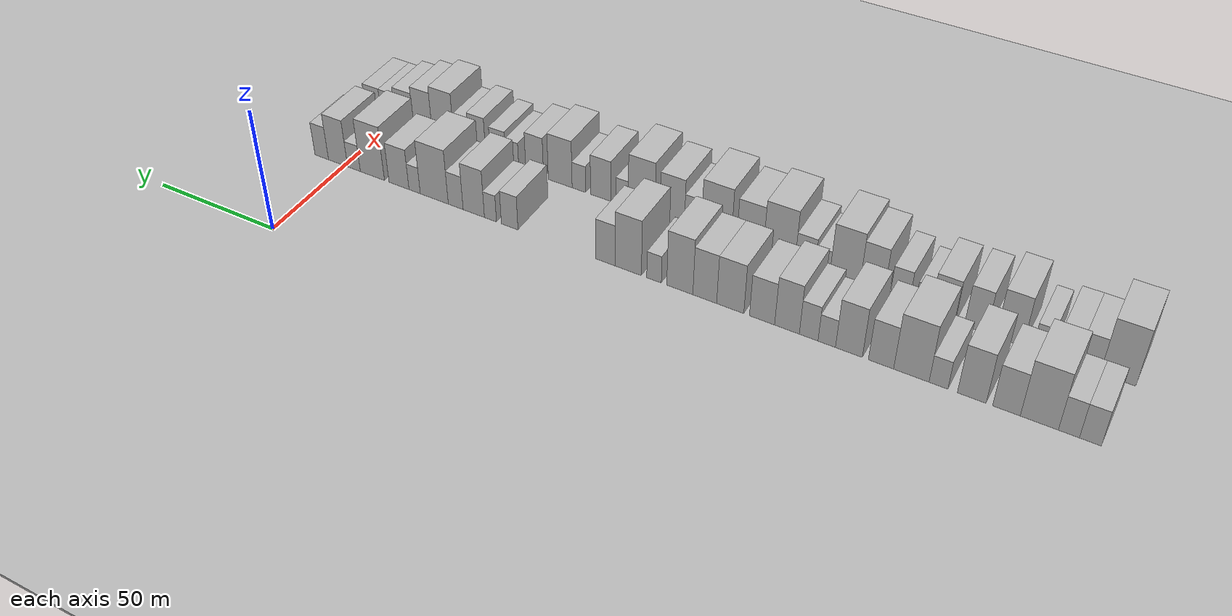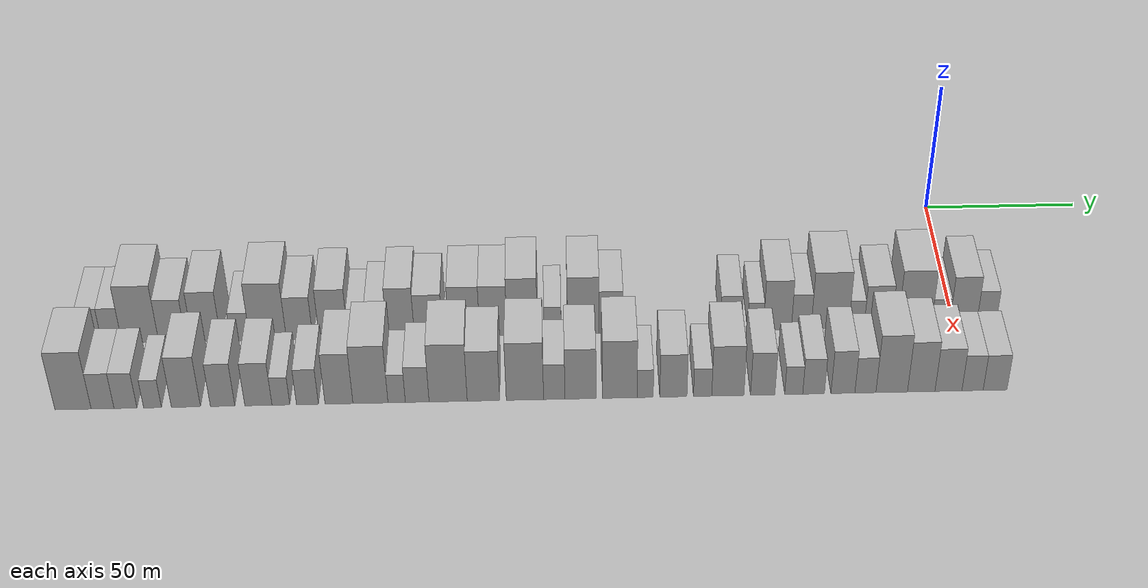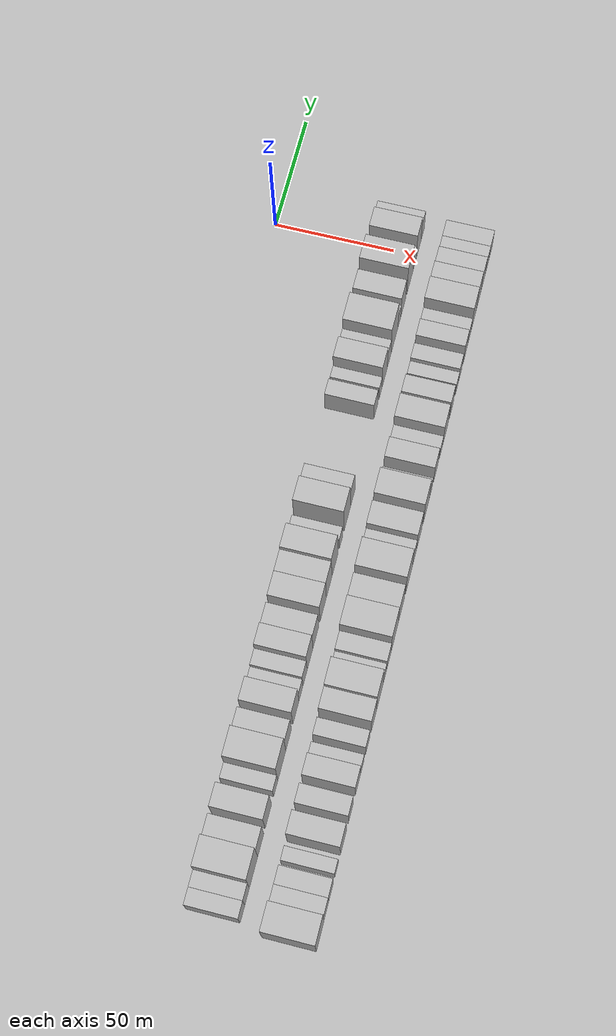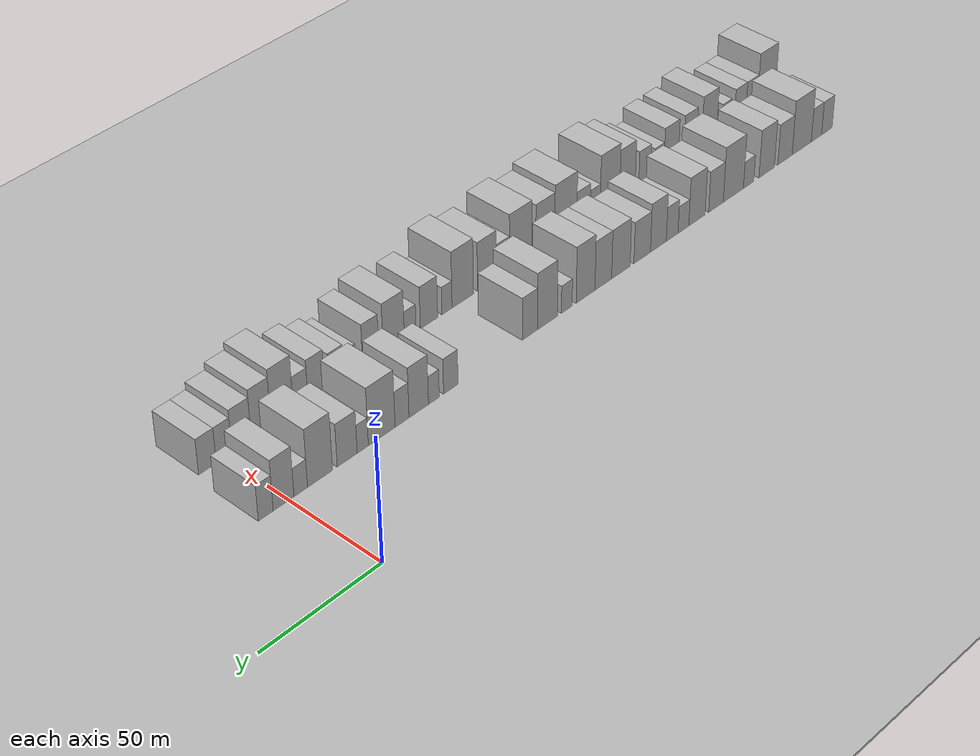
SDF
<sdf version="1.6">
 <world name="default">
  <include><name>ground_plane_1</name><uri>model://HANNAS_ground_plane</uri></include>
  <include>
   <name>ground_plane_2</name>
   <uri>model://HANNAS_ground_plane</uri>
   <pose>100 0 0  0 0 0</pose>
  </include>
  <model name="building_1">
   <static>1</static>
   <pose>50.0000 -271.7635 0 0.000000 0.000000 0.000000</pose>
   <link name="link">
    <pose>0 0 7.50 0 0 0</pose>
    <collision name="collision"><geometry><box><size>20.0000 6.4730 15.0000</size></box></geometry></collision>
    <visual name="visual">
     <cast_shadows>0</cast_shadows>
     <geometry><box><size>20.0000 6.4730 15.0000</size></box></geometry>
     <material>
      <script>
       <uri>model://HANNAS_wall/materials/scripts</uri>
       <uri>model://HANNAS_wall/materials/textures</uri>
       <name>vrc/HANNAS_wall</name>
      </script>
     </material>
    </visual>
   </link>
  </model>
  <model name="building_2">
   <static>1</static>
   <pose>50.0000 -265.3977 0 0.000000 0.000000 0.000000</pose>
   <link name="link">
    <pose>0 0 7.50 0 0 0</pose>
    <collision name="collision"><geometry><box><size>20.0000 6.2587 15.0000</size></box></geometry></collision>
    <visual name="visual">
     <cast_shadows>0</cast_shadows>
     <geometry><box><size>20.0000 6.2587 15.0000</size></box></geometry>
     <material>
      <script>
       <uri>model://HANNAS_wall/materials/scripts</uri>
       <uri>model://HANNAS_wall/materials/textures</uri>
       <name>vrc/HANNAS_wall</name>
      </script>
     </material>
    </visual>
   </link>
  </model>
  <model name="building_3">
   <static>1</static>
   <pose>50.0000 -256.5157 0 0.000000 0.000000 0.000000</pose>
   <link name="link">
    <pose>0 0 12.00 0 0 0</pose>
    <collision name="collision"><geometry><box><size>20.0000 11.5051 24.0000</size></box></geometry></collision>
    <visual name="visual">
     <cast_shadows>0</cast_shadows>
     <geometry><box><size>20.0000 11.5051 24.0000</size></box></geometry>
     <material>
      <script>
       <uri>model://HANNAS_wall/materials/scripts</uri>
       <uri>model://HANNAS_wall/materials/textures</uri>
       <name>vrc/HANNAS_wall</name>
      </script>
     </material>
    </visual>
   </link>
  </model>
  <model name="building_4">
   <static>1</static>
   <pose>50.0000 -246.5137 0 0.000000 0.000000 0.000000</pose>
   <link name="link">
    <pose>0 0 9.00 0 0 0</pose>
    <collision name="collision"><geometry><box><size>20.0000 8.4989 18.0000</size></box></geometry></collision>
    <visual name="visual">
     <cast_shadows>0</cast_shadows>
     <geometry><box><size>20.0000 8.4989 18.0000</size></box></geometry>
     <material>
      <script>
       <uri>model://HANNAS_wall/materials/scripts</uri>
       <uri>model://HANNAS_wall/materials/textures</uri>
       <name>vrc/HANNAS_wall</name>
      </script>
     </material>
    </visual>
   </link>
  </model>
  <model name="building_5">
   <static>1</static>
   <pose>50.0000 -235.7697 0 0.000000 0.000000 0.000000</pose>
   <link name="link">
    <pose>0 0 10.50 0 0 0</pose>
    <collision name="collision"><geometry><box><size>20.0000 8.9892 21.0000</size></box></geometry></collision>
    <visual name="visual">
     <cast_shadows>0</cast_shadows>
     <geometry><box><size>20.0000 8.9892 21.0000</size></box></geometry>
     <material>
      <script>
       <uri>model://HANNAS_wall/materials/scripts</uri>
       <uri>model://HANNAS_wall/materials/textures</uri>
       <name>vrc/HANNAS_wall</name>
      </script>
     </material>
    </visual>
   </link>
  </model>
  <model name="building_6">
   <static>1</static>
   <pose>50.0000 -225.2756 0 0.000000 0.000000 0.000000</pose>
   <link name="link">
    <pose>0 0 6.00 0 0 0</pose>
    <collision name="collision"><geometry><box><size>20.0000 5.9991 12.0000</size></box></geometry></collision>
    <visual name="visual">
     <cast_shadows>0</cast_shadows>
     <geometry><box><size>20.0000 5.9991 12.0000</size></box></geometry>
     <material>
      <script>
       <uri>model://HANNAS_wall/materials/scripts</uri>
       <uri>model://HANNAS_wall/materials/textures</uri>
       <name>vrc/HANNAS_wall</name>
      </script>
     </material>
    </visual>
   </link>
  </model>
  <model name="building_7">
   <static>1</static>
   <pose>50.0000 -216.5486 0 0.000000 0.000000 0.000000</pose>
   <link name="link">
    <pose>0 0 12.00 0 0 0</pose>
    <collision name="collision"><geometry><box><size>20.0000 11.4547 24.0000</size></box></geometry></collision>
    <visual name="visual">
     <cast_shadows>0</cast_shadows>
     <geometry><box><size>20.0000 11.4547 24.0000</size></box></geometry>
     <material>
      <script>
       <uri>model://HANNAS_wall/materials/scripts</uri>
       <uri>model://HANNAS_wall/materials/textures</uri>
       <name>vrc/HANNAS_wall</name>
      </script>
     </material>
    </visual>
   </link>
  </model>
  <model name="building_8">
   <static>1</static>
   <pose>50.0000 -206.6811 0 0.000000 0.000000 0.000000</pose>
   <link name="link">
    <pose>0 0 9.00 0 0 0</pose>
    <collision name="collision"><geometry><box><size>20.0000 8.2803 18.0000</size></box></geometry></collision>
    <visual name="visual">
     <cast_shadows>0</cast_shadows>
     <geometry><box><size>20.0000 8.2803 18.0000</size></box></geometry>
     <material>
      <script>
       <uri>model://HANNAS_wall/materials/scripts</uri>
       <uri>model://HANNAS_wall/materials/textures</uri>
       <name>vrc/HANNAS_wall</name>
      </script>
     </material>
    </visual>
   </link>
  </model>
  <model name="building_9">
   <static>1</static>
   <pose>50.0000 -196.0445 0 0.000000 0.000000 0.000000</pose>
   <link name="link">
    <pose>0 0 10.50 0 0 0</pose>
    <collision name="collision"><geometry><box><size>20.0000 8.9930 21.0000</size></box></geometry></collision>
    <visual name="visual">
     <cast_shadows>0</cast_shadows>
     <geometry><box><size>20.0000 8.9930 21.0000</size></box></geometry>
     <material>
      <script>
       <uri>model://HANNAS_wall/materials/scripts</uri>
       <uri>model://HANNAS_wall/materials/textures</uri>
       <name>vrc/HANNAS_wall</name>
      </script>
     </material>
    </visual>
   </link>
  </model>
  <model name="building_10">
   <static>1</static>
   <pose>50.0000 -188.5942 0 0.000000 0.000000 0.000000</pose>
   <link name="link">
    <pose>0 0 6.00 0 0 0</pose>
    <collision name="collision"><geometry><box><size>20.0000 5.9075 12.0000</size></box></geometry></collision>
    <visual name="visual">
     <cast_shadows>0</cast_shadows>
     <geometry><box><size>20.0000 5.9075 12.0000</size></box></geometry>
     <material>
      <script>
       <uri>model://HANNAS_wall/materials/scripts</uri>
       <uri>model://HANNAS_wall/materials/textures</uri>
       <name>vrc/HANNAS_wall</name>
      </script>
     </material>
    </visual>
   </link>
  </model>
  <model name="building_11">
   <static>1</static>
   <pose>50.0000 -182.4483 0 0.000000 0.000000 0.000000</pose>
   <link name="link">
    <pose>0 0 7.50 0 0 0</pose>
    <collision name="collision"><geometry><box><size>20.0000 6.3844 15.0000</size></box></geometry></collision>
    <visual name="visual">
     <cast_shadows>0</cast_shadows>
     <geometry><box><size>20.0000 6.3844 15.0000</size></box></geometry>
     <material>
      <script>
       <uri>model://HANNAS_wall/materials/scripts</uri>
       <uri>model://HANNAS_wall/materials/textures</uri>
       <name>vrc/HANNAS_wall</name>
      </script>
     </material>
    </visual>
   </link>
  </model>
  <model name="building_12">
   <static>1</static>
   <pose>50.0000 -174.9815 0 0.000000 0.000000 0.000000</pose>
   <link name="link">
    <pose>0 0 10.50 0 0 0</pose>
    <collision name="collision"><geometry><box><size>20.0000 8.5493 21.0000</size></box></geometry></collision>
    <visual name="visual">
     <cast_shadows>0</cast_shadows>
     <geometry><box><size>20.0000 8.5493 21.0000</size></box></geometry>
     <material>
      <script>
       <uri>model://HANNAS_wall/materials/scripts</uri>
       <uri>model://HANNAS_wall/materials/textures</uri>
       <name>vrc/HANNAS_wall</name>
      </script>
     </material>
    </visual>
   </link>
  </model>
  <model name="building_13">
   <static>1</static>
   <pose>50.0000 -166.2989 0 0.000000 0.000000 0.000000</pose>
   <link name="link">
    <pose>0 0 9.00 0 0 0</pose>
    <collision name="collision"><geometry><box><size>20.0000 8.8159 18.0000</size></box></geometry></collision>
    <visual name="visual">
     <cast_shadows>0</cast_shadows>
     <geometry><box><size>20.0000 8.8159 18.0000</size></box></geometry>
     <material>
      <script>
       <uri>model://HANNAS_wall/materials/scripts</uri>
       <uri>model://HANNAS_wall/materials/textures</uri>
       <name>vrc/HANNAS_wall</name>
      </script>
     </material>
    </visual>
   </link>
  </model>
  <model name="building_14">
   <static>1</static>
   <pose>50.0000 -155.0374 0 0.000000 0.000000 0.000000</pose>
   <link name="link">
    <pose>0 0 10.50 0 0 0</pose>
    <collision name="collision"><geometry><box><size>20.0000 9.7073 21.0000</size></box></geometry></collision>
    <visual name="visual">
     <cast_shadows>0</cast_shadows>
     <geometry><box><size>20.0000 9.7073 21.0000</size></box></geometry>
     <material>
      <script>
       <uri>model://HANNAS_wall/materials/scripts</uri>
       <uri>model://HANNAS_wall/materials/textures</uri>
       <name>vrc/HANNAS_wall</name>
      </script>
     </material>
    </visual>
   </link>
  </model>
  <model name="building_15">
   <static>1</static>
   <pose>50.0000 -145.8788 0 0.000000 0.000000 0.000000</pose>
   <link name="link">
    <pose>0 0 10.50 0 0 0</pose>
    <collision name="collision"><geometry><box><size>20.0000 8.6098 21.0000</size></box></geometry></collision>
    <visual name="visual">
     <cast_shadows>0</cast_shadows>
     <geometry><box><size>20.0000 8.6098 21.0000</size></box></geometry>
     <material>
      <script>
       <uri>model://HANNAS_wall/materials/scripts</uri>
       <uri>model://HANNAS_wall/materials/textures</uri>
       <name>vrc/HANNAS_wall</name>
      </script>
     </material>
    </visual>
   </link>
  </model>
  <model name="building_16">
   <static>1</static>
   <pose>50.0000 -136.7682 0 0.000000 0.000000 0.000000</pose>
   <link name="link">
    <pose>0 0 12.00 0 0 0</pose>
    <collision name="collision"><geometry><box><size>20.0000 9.6115 24.0000</size></box></geometry></collision>
    <visual name="visual">
     <cast_shadows>0</cast_shadows>
     <geometry><box><size>20.0000 9.6115 24.0000</size></box></geometry>
     <material>
      <script>
       <uri>model://HANNAS_wall/materials/scripts</uri>
       <uri>model://HANNAS_wall/materials/textures</uri>
       <name>vrc/HANNAS_wall</name>
      </script>
     </material>
    </visual>
   </link>
  </model>
  <model name="building_17">
   <static>1</static>
   <pose>50.0000 -127.2424 0 0.000000 0.000000 0.000000</pose>
   <link name="link">
    <pose>0 0 6.00 0 0 0</pose>
    <collision name="collision"><geometry><box><size>20.0000 5.4399 12.0000</size></box></geometry></collision>
    <visual name="visual">
     <cast_shadows>0</cast_shadows>
     <geometry><box><size>20.0000 5.4399 12.0000</size></box></geometry>
     <material>
      <script>
       <uri>model://HANNAS_wall/materials/scripts</uri>
       <uri>model://HANNAS_wall/materials/textures</uri>
       <name>vrc/HANNAS_wall</name>
      </script>
     </material>
    </visual>
   </link>
  </model>
  <model name="building_18">
   <static>1</static>
   <pose>50.0000 -117.5544 0 0.000000 0.000000 0.000000</pose>
   <link name="link">
    <pose>0 0 12.00 0 0 0</pose>
    <collision name="collision"><geometry><box><size>20.0000 9.9362 24.0000</size></box></geometry></collision>
    <visual name="visual">
     <cast_shadows>0</cast_shadows>
     <geometry><box><size>20.0000 9.9362 24.0000</size></box></geometry>
     <material>
      <script>
       <uri>model://HANNAS_wall/materials/scripts</uri>
       <uri>model://HANNAS_wall/materials/textures</uri>
       <name>vrc/HANNAS_wall</name>
      </script>
     </material>
    </visual>
   </link>
  </model>
  <model name="building_19">
   <static>1</static>
   <pose>50.0000 -108.8718 0 0.000000 0.000000 0.000000</pose>
   <link name="link">
    <pose>0 0 9.00 0 0 0</pose>
    <collision name="collision"><geometry><box><size>20.0000 7.4288 18.0000</size></box></geometry></collision>
    <visual name="visual">
     <cast_shadows>0</cast_shadows>
     <geometry><box><size>20.0000 7.4288 18.0000</size></box></geometry>
     <material>
      <script>
       <uri>model://HANNAS_wall/materials/scripts</uri>
       <uri>model://HANNAS_wall/materials/textures</uri>
       <name>vrc/HANNAS_wall</name>
      </script>
     </material>
    </visual>
   </link>
  </model>
  <model name="building_20">
   <static>1</static>
   <pose>50.0000 -71.0486 0 0.000000 0.000000 0.000000</pose>
   <link name="link">
    <pose>0 0 7.50 0 0 0</pose>
    <collision name="collision"><geometry><box><size>20.0000 6.7392 15.0000</size></box></geometry></collision>
    <visual name="visual">
     <cast_shadows>0</cast_shadows>
     <geometry><box><size>20.0000 6.7392 15.0000</size></box></geometry>
     <material>
      <script>
       <uri>model://HANNAS_wall/materials/scripts</uri>
       <uri>model://HANNAS_wall/materials/textures</uri>
       <name>vrc/HANNAS_wall</name>
      </script>
     </material>
    </visual>
   </link>
  </model>
  <model name="building_21">
   <static>1</static>
   <pose>50.0000 -63.2042 0 0.000000 0.000000 0.000000</pose>
   <link name="link">
    <pose>0 0 6.00 0 0 0</pose>
    <collision name="collision"><geometry><box><size>20.0000 4.9497 12.0000</size></box></geometry></collision>
    <visual name="visual">
     <cast_shadows>0</cast_shadows>
     <geometry><box><size>20.0000 4.9497 12.0000</size></box></geometry>
     <material>
      <script>
       <uri>model://HANNAS_wall/materials/scripts</uri>
       <uri>model://HANNAS_wall/materials/textures</uri>
       <name>vrc/HANNAS_wall</name>
      </script>
     </material>
    </visual>
   </link>
  </model>
  <model name="building_22">
   <static>1</static>
   <pose>50.0000 -56.3069 0 0.000000 0.000000 0.000000</pose>
   <link name="link">
    <pose>0 0 10.50 0 0 0</pose>
    <collision name="collision"><geometry><box><size>20.0000 8.8449 21.0000</size></box></geometry></collision>
    <visual name="visual">
     <cast_shadows>0</cast_shadows>
     <geometry><box><size>20.0000 8.8449 21.0000</size></box></geometry>
     <material>
      <script>
       <uri>model://HANNAS_wall/materials/scripts</uri>
       <uri>model://HANNAS_wall/materials/textures</uri>
       <name>vrc/HANNAS_wall</name>
      </script>
     </material>
    </visual>
   </link>
  </model>
  <model name="building_23">
   <static>1</static>
   <pose>50.0000 -48.7572 0 0.000000 0.000000 0.000000</pose>
   <link name="link">
    <pose>0 0 7.50 0 0 0</pose>
    <collision name="collision"><geometry><box><size>20.0000 6.2545 15.0000</size></box></geometry></collision>
    <visual name="visual">
     <cast_shadows>0</cast_shadows>
     <geometry><box><size>20.0000 6.2545 15.0000</size></box></geometry>
     <material>
      <script>
       <uri>model://HANNAS_wall/materials/scripts</uri>
       <uri>model://HANNAS_wall/materials/textures</uri>
       <name>vrc/HANNAS_wall</name>
      </script>
     </material>
    </visual>
   </link>
  </model>
  <model name="building_24">
   <static>1</static>
   <pose>50.0000 -39.6794 0 0.000000 0.000000 0.000000</pose>
   <link name="link">
    <pose>0 0 12.00 0 0 0</pose>
    <collision name="collision"><geometry><box><size>20.0000 11.9011 24.0000</size></box></geometry></collision>
    <visual name="visual">
     <cast_shadows>0</cast_shadows>
     <geometry><box><size>20.0000 11.9011 24.0000</size></box></geometry>
     <material>
      <script>
       <uri>model://HANNAS_wall/materials/scripts</uri>
       <uri>model://HANNAS_wall/materials/textures</uri>
       <name>vrc/HANNAS_wall</name>
      </script>
     </material>
    </visual>
   </link>
  </model>
  <model name="building_25">
   <static>1</static>
   <pose>50.0000 -31.2915 0 0.000000 0.000000 0.000000</pose>
   <link name="link">
    <pose>0 0 6.00 0 0 0</pose>
    <collision name="collision"><geometry><box><size>20.0000 4.8747 12.0000</size></box></geometry></collision>
    <visual name="visual">
     <cast_shadows>0</cast_shadows>
     <geometry><box><size>20.0000 4.8747 12.0000</size></box></geometry>
     <material>
      <script>
       <uri>model://HANNAS_wall/materials/scripts</uri>
       <uri>model://HANNAS_wall/materials/textures</uri>
       <name>vrc/HANNAS_wall</name>
      </script>
     </material>
    </visual>
   </link>
  </model>
  <model name="building_26">
   <static>1</static>
   <pose>50.0000 -24.5110 0 0.000000 0.000000 0.000000</pose>
   <link name="link">
    <pose>0 0 9.00 0 0 0</pose>
    <collision name="collision"><geometry><box><size>20.0000 8.6863 18.0000</size></box></geometry></collision>
    <visual name="visual">
     <cast_shadows>0</cast_shadows>
     <geometry><box><size>20.0000 8.6863 18.0000</size></box></geometry>
     <material>
      <script>
       <uri>model://HANNAS_wall/materials/scripts</uri>
       <uri>model://HANNAS_wall/materials/textures</uri>
       <name>vrc/HANNAS_wall</name>
      </script>
     </material>
    </visual>
   </link>
  </model>
  <model name="building_27">
   <static>1</static>
   <pose>50.0000 -12.8397 0 0.000000 0.000000 0.000000</pose>
   <link name="link">
    <pose>0 0 12.00 0 0 0</pose>
    <collision name="collision"><geometry><box><size>20.0000 10.6564 24.0000</size></box></geometry></collision>
    <visual name="visual">
     <cast_shadows>0</cast_shadows>
     <geometry><box><size>20.0000 10.6564 24.0000</size></box></geometry>
     <material>
      <script>
       <uri>model://HANNAS_wall/materials/scripts</uri>
       <uri>model://HANNAS_wall/materials/textures</uri>
       <name>vrc/HANNAS_wall</name>
      </script>
     </material>
    </visual>
   </link>
  </model>
  <model name="building_28">
   <static>1</static>
   <pose>50.0000 -4.6544 0 0.000000 0.000000 0.000000</pose>
   <link name="link">
    <pose>0 0 6.00 0 0 0</pose>
    <collision name="collision"><geometry><box><size>20.0000 5.7142 12.0000</size></box></geometry></collision>
    <visual name="visual">
     <cast_shadows>0</cast_shadows>
     <geometry><box><size>20.0000 5.7142 12.0000</size></box></geometry>
     <material>
      <script>
       <uri>model://HANNAS_wall/materials/scripts</uri>
       <uri>model://HANNAS_wall/materials/textures</uri>
       <name>vrc/HANNAS_wall</name>
      </script>
     </material>
    </visual>
   </link>
  </model>
  <model name="building_29">
   <static>1</static>
   <pose>50.0000 2.5141 0 0.000000 0.000000 0.000000</pose>
   <link name="link">
    <pose>0 0 10.50 0 0 0</pose>
    <collision name="collision"><geometry><box><size>20.0000 8.6228 21.0000</size></box></geometry></collision>
    <visual name="visual">
     <cast_shadows>0</cast_shadows>
     <geometry><box><size>20.0000 8.6228 21.0000</size></box></geometry>
     <material>
      <script>
       <uri>model://HANNAS_wall/materials/scripts</uri>
       <uri>model://HANNAS_wall/materials/textures</uri>
       <name>vrc/HANNAS_wall</name>
      </script>
     </material>
    </visual>
   </link>
  </model>
  <model name="building_30">
   <static>1</static>
   <pose>50.0000 9.9196 0 0.000000 0.000000 0.000000</pose>
   <link name="link">
    <pose>0 0 7.50 0 0 0</pose>
    <collision name="collision"><geometry><box><size>20.0000 6.1883 15.0000</size></box></geometry></collision>
    <visual name="visual">
     <cast_shadows>0</cast_shadows>
     <geometry><box><size>20.0000 6.1883 15.0000</size></box></geometry>
     <material>
      <script>
       <uri>model://HANNAS_wall/materials/scripts</uri>
       <uri>model://HANNAS_wall/materials/textures</uri>
       <name>vrc/HANNAS_wall</name>
      </script>
     </material>
    </visual>
   </link>
  </model>
  <model name="building_62">
   <static>1</static>
   <pose>79.0000 -272.5487 0 0.000000 0.000000 0.000000</pose>
   <link name="link">
    <pose>0 0 12.00 0 0 0</pose>
    <collision name="collision"><geometry><box><size>20.0000 10.9025 24.0000</size></box></geometry></collision>
    <visual name="visual">
     <cast_shadows>0</cast_shadows>
     <geometry><box><size>20.0000 10.9025 24.0000</size></box></geometry>
     <material>
      <script>
       <uri>model://HANNAS_wall/materials/scripts</uri>
       <uri>model://HANNAS_wall/materials/textures</uri>
       <name>vrc/HANNAS_wall</name>
      </script>
     </material>
    </visual>
   </link>
  </model>
  <model name="building_63">
   <static>1</static>
   <pose>79.0000 -263.6577 0 0.000000 0.000000 0.000000</pose>
   <link name="link">
    <pose>0 0 7.50 0 0 0</pose>
    <collision name="collision"><geometry><box><size>20.0000 6.8796 15.0000</size></box></geometry></collision>
    <visual name="visual">
     <cast_shadows>0</cast_shadows>
     <geometry><box><size>20.0000 6.8796 15.0000</size></box></geometry>
     <material>
      <script>
       <uri>model://HANNAS_wall/materials/scripts</uri>
       <uri>model://HANNAS_wall/materials/textures</uri>
       <name>vrc/HANNAS_wall</name>
      </script>
     </material>
    </visual>
   </link>
  </model>
  <model name="building_64">
   <static>1</static>
   <pose>79.0000 -256.7637 0 0.000000 0.000000 0.000000</pose>
   <link name="link">
    <pose>0 0 7.50 0 0 0</pose>
    <collision name="collision"><geometry><box><size>20.0000 6.9084 15.0000</size></box></geometry></collision>
    <visual name="visual">
     <cast_shadows>0</cast_shadows>
     <geometry><box><size>20.0000 6.9084 15.0000</size></box></geometry>
     <material>
      <script>
       <uri>model://HANNAS_wall/materials/scripts</uri>
       <uri>model://HANNAS_wall/materials/textures</uri>
       <name>vrc/HANNAS_wall</name>
      </script>
     </material>
    </visual>
   </link>
  </model>
  <model name="building_65">
   <static>1</static>
   <pose>79.0000 -248.6227 0 0.000000 0.000000 0.000000</pose>
   <link name="link">
    <pose>0 0 6.00 0 0 0</pose>
    <collision name="collision"><geometry><box><size>20.0000 5.3736 12.0000</size></box></geometry></collision>
    <visual name="visual">
     <cast_shadows>0</cast_shadows>
     <geometry><box><size>20.0000 5.3736 12.0000</size></box></geometry>
     <material>
      <script>
       <uri>model://HANNAS_wall/materials/scripts</uri>
       <uri>model://HANNAS_wall/materials/textures</uri>
       <name>vrc/HANNAS_wall</name>
      </script>
     </material>
    </visual>
   </link>
  </model>
  <model name="building_66">
   <static>1</static>
   <pose>79.0000 -238.5490 0 0.000000 0.000000 0.000000</pose>
   <link name="link">
    <pose>0 0 10.50 0 0 0</pose>
    <collision name="collision"><geometry><box><size>20.0000 8.7739 21.0000</size></box></geometry></collision>
    <visual name="visual">
     <cast_shadows>0</cast_shadows>
     <geometry><box><size>20.0000 8.7739 21.0000</size></box></geometry>
     <material>
      <script>
       <uri>model://HANNAS_wall/materials/scripts</uri>
       <uri>model://HANNAS_wall/materials/textures</uri>
       <name>vrc/HANNAS_wall</name>
      </script>
     </material>
    </visual>
   </link>
  </model>
  <model name="building_67">
   <static>1</static>
   <pose>79.0000 -227.4732 0 0.000000 0.000000 0.000000</pose>
   <link name="link">
    <pose>0 0 9.00 0 0 0</pose>
    <collision name="collision"><geometry><box><size>20.0000 7.3776 18.0000</size></box></geometry></collision>
    <visual name="visual">
     <cast_shadows>0</cast_shadows>
     <geometry><box><size>20.0000 7.3776 18.0000</size></box></geometry>
     <material>
      <script>
       <uri>model://HANNAS_wall/materials/scripts</uri>
       <uri>model://HANNAS_wall/materials/textures</uri>
       <name>vrc/HANNAS_wall</name>
      </script>
     </material>
    </visual>
   </link>
  </model>
  <model name="building_68">
   <static>1</static>
   <pose>79.0000 -216.6721 0 0.000000 0.000000 0.000000</pose>
   <link name="link">
    <pose>0 0 9.00 0 0 0</pose>
    <collision name="collision"><geometry><box><size>20.0000 8.2247 18.0000</size></box></geometry></collision>
    <visual name="visual">
     <cast_shadows>0</cast_shadows>
     <geometry><box><size>20.0000 8.2247 18.0000</size></box></geometry>
     <material>
      <script>
       <uri>model://HANNAS_wall/materials/scripts</uri>
       <uri>model://HANNAS_wall/materials/textures</uri>
       <name>vrc/HANNAS_wall</name>
      </script>
     </material>
    </visual>
   </link>
  </model>
  <model name="building_69">
   <static>1</static>
   <pose>79.0000 -209.8645 0 0.000000 0.000000 0.000000</pose>
   <link name="link">
    <pose>0 0 6.00 0 0 0</pose>
    <collision name="collision"><geometry><box><size>20.0000 5.3905 12.0000</size></box></geometry></collision>
    <visual name="visual">
     <cast_shadows>0</cast_shadows>
     <geometry><box><size>20.0000 5.3905 12.0000</size></box></geometry>
     <material>
      <script>
       <uri>model://HANNAS_wall/materials/scripts</uri>
       <uri>model://HANNAS_wall/materials/textures</uri>
       <name>vrc/HANNAS_wall</name>
      </script>
     </material>
    </visual>
   </link>
  </model>
  <model name="building_70">
   <static>1</static>
   <pose>79.0000 -201.8517 0 0.000000 0.000000 0.000000</pose>
   <link name="link">
    <pose>0 0 7.50 0 0 0</pose>
    <collision name="collision"><geometry><box><size>20.0000 6.6352 15.0000</size></box></geometry></collision>
    <visual name="visual">
     <cast_shadows>0</cast_shadows>
     <geometry><box><size>20.0000 6.6352 15.0000</size></box></geometry>
     <material>
      <script>
       <uri>model://HANNAS_wall/materials/scripts</uri>
       <uri>model://HANNAS_wall/materials/textures</uri>
       <name>vrc/HANNAS_wall</name>
      </script>
     </material>
    </visual>
   </link>
  </model>
  <model name="building_71">
   <static>1</static>
   <pose>79.0000 -192.3086 0 0.000000 0.000000 0.000000</pose>
   <link name="link">
    <pose>0 0 10.50 0 0 0</pose>
    <collision name="collision"><geometry><box><size>20.0000 8.4509 21.0000</size></box></geometry></collision>
    <visual name="visual">
     <cast_shadows>0</cast_shadows>
     <geometry><box><size>20.0000 8.4509 21.0000</size></box></geometry>
     <material>
      <script>
       <uri>model://HANNAS_wall/materials/scripts</uri>
       <uri>model://HANNAS_wall/materials/textures</uri>
       <name>vrc/HANNAS_wall</name>
      </script>
     </material>
    </visual>
   </link>
  </model>
  <model name="building_72">
   <static>1</static>
   <pose>79.0000 -182.7796 0 0.000000 0.000000 0.000000</pose>
   <link name="link">
    <pose>0 0 12.00 0 0 0</pose>
    <collision name="collision"><geometry><box><size>20.0000 10.6071 24.0000</size></box></geometry></collision>
    <visual name="visual">
     <cast_shadows>0</cast_shadows>
     <geometry><box><size>20.0000 10.6071 24.0000</size></box></geometry>
     <material>
      <script>
       <uri>model://HANNAS_wall/materials/scripts</uri>
       <uri>model://HANNAS_wall/materials/textures</uri>
       <name>vrc/HANNAS_wall</name>
      </script>
     </material>
    </visual>
   </link>
  </model>
  <model name="building_73">
   <static>1</static>
   <pose>79.0000 -174.8468 0 0.000000 0.000000 0.000000</pose>
   <link name="link">
    <pose>0 0 6.00 0 0 0</pose>
    <collision name="collision"><geometry><box><size>20.0000 5.2585 12.0000</size></box></geometry></collision>
    <visual name="visual">
     <cast_shadows>0</cast_shadows>
     <geometry><box><size>20.0000 5.2585 12.0000</size></box></geometry>
     <material>
      <script>
       <uri>model://HANNAS_wall/materials/scripts</uri>
       <uri>model://HANNAS_wall/materials/textures</uri>
       <name>vrc/HANNAS_wall</name>
      </script>
     </material>
    </visual>
   </link>
  </model>
  <model name="building_74">
   <static>1</static>
   <pose>79.0000 -168.6190 0 0.000000 0.000000 0.000000</pose>
   <link name="link">
    <pose>0 0 7.50 0 0 0</pose>
    <collision name="collision"><geometry><box><size>20.0000 7.1972 15.0000</size></box></geometry></collision>
    <visual name="visual">
     <cast_shadows>0</cast_shadows>
     <geometry><box><size>20.0000 7.1972 15.0000</size></box></geometry>
     <material>
      <script>
       <uri>model://HANNAS_wall/materials/scripts</uri>
       <uri>model://HANNAS_wall/materials/textures</uri>
       <name>vrc/HANNAS_wall</name>
      </script>
     </material>
    </visual>
   </link>
  </model>
  <model name="building_75">
   <static>1</static>
   <pose>79.0000 -159.2326 0 0.000000 0.000000 0.000000</pose>
   <link name="link">
    <pose>0 0 12.00 0 0 0</pose>
    <collision name="collision"><geometry><box><size>20.0000 11.5757 24.0000</size></box></geometry></collision>
    <visual name="visual">
     <cast_shadows>0</cast_shadows>
     <geometry><box><size>20.0000 11.5757 24.0000</size></box></geometry>
     <material>
      <script>
       <uri>model://HANNAS_wall/materials/scripts</uri>
       <uri>model://HANNAS_wall/materials/textures</uri>
       <name>vrc/HANNAS_wall</name>
      </script>
     </material>
    </visual>
   </link>
  </model>
  <model name="building_76">
   <static>1</static>
   <pose>79.0000 -148.5193 0 0.000000 0.000000 0.000000</pose>
   <link name="link">
    <pose>0 0 10.50 0 0 0</pose>
    <collision name="collision"><geometry><box><size>20.0000 9.8508 21.0000</size></box></geometry></collision>
    <visual name="visual">
     <cast_shadows>0</cast_shadows>
     <geometry><box><size>20.0000 9.8508 21.0000</size></box></geometry>
     <material>
      <script>
       <uri>model://HANNAS_wall/materials/scripts</uri>
       <uri>model://HANNAS_wall/materials/textures</uri>
       <name>vrc/HANNAS_wall</name>
      </script>
     </material>
    </visual>
   </link>
  </model>
  <model name="building_77">
   <static>1</static>
   <pose>79.0000 -135.9232 0 0.000000 0.000000 0.000000</pose>
   <link name="link">
    <pose>0 0 12.00 0 0 0</pose>
    <collision name="collision"><geometry><box><size>20.0000 11.3415 24.0000</size></box></geometry></collision>
    <visual name="visual">
     <cast_shadows>0</cast_shadows>
     <geometry><box><size>20.0000 11.3415 24.0000</size></box></geometry>
     <material>
      <script>
       <uri>model://HANNAS_wall/materials/scripts</uri>
       <uri>model://HANNAS_wall/materials/textures</uri>
       <name>vrc/HANNAS_wall</name>
      </script>
     </material>
    </visual>
   </link>
  </model>
  <model name="building_78">
   <static>1</static>
   <pose>79.0000 -127.0063 0 0.000000 0.000000 0.000000</pose>
   <link name="link">
    <pose>0 0 7.50 0 0 0</pose>
    <collision name="collision"><geometry><box><size>20.0000 6.4922 15.0000</size></box></geometry></collision>
    <visual name="visual">
     <cast_shadows>0</cast_shadows>
     <geometry><box><size>20.0000 6.4922 15.0000</size></box></geometry>
     <material>
      <script>
       <uri>model://HANNAS_wall/materials/scripts</uri>
       <uri>model://HANNAS_wall/materials/textures</uri>
       <name>vrc/HANNAS_wall</name>
      </script>
     </material>
    </visual>
   </link>
  </model>
  <model name="building_79">
   <static>1</static>
   <pose>79.0000 -119.0213 0 0.000000 0.000000 0.000000</pose>
   <link name="link">
    <pose>0 0 10.50 0 0 0</pose>
    <collision name="collision"><geometry><box><size>20.0000 9.4777 21.0000</size></box></geometry></collision>
    <visual name="visual">
     <cast_shadows>0</cast_shadows>
     <geometry><box><size>20.0000 9.4777 21.0000</size></box></geometry>
     <material>
      <script>
       <uri>model://HANNAS_wall/materials/scripts</uri>
       <uri>model://HANNAS_wall/materials/textures</uri>
       <name>vrc/HANNAS_wall</name>
      </script>
     </material>
    </visual>
   </link>
  </model>
  <model name="building_80">
   <static>1</static>
   <pose>79.0000 -107.0539 0 0.000000 0.000000 0.000000</pose>
   <link name="link">
    <pose>0 0 12.00 0 0 0</pose>
    <collision name="collision"><geometry><box><size>20.0000 10.4571 24.0000</size></box></geometry></collision>
    <visual name="visual">
     <cast_shadows>0</cast_shadows>
     <geometry><box><size>20.0000 10.4571 24.0000</size></box></geometry>
     <material>
      <script>
       <uri>model://HANNAS_wall/materials/scripts</uri>
       <uri>model://HANNAS_wall/materials/textures</uri>
       <name>vrc/HANNAS_wall</name>
      </script>
     </material>
    </visual>
   </link>
  </model>
  <model name="building_81">
   <static>1</static>
   <pose>79.0000 -99.3627 0 0.000000 0.000000 0.000000</pose>
   <link name="link">
    <pose>0 0 6.00 0 0 0</pose>
    <collision name="collision"><geometry><box><size>20.0000 4.9252 12.0000</size></box></geometry></collision>
    <visual name="visual">
     <cast_shadows>0</cast_shadows>
     <geometry><box><size>20.0000 4.9252 12.0000</size></box></geometry>
     <material>
      <script>
       <uri>model://HANNAS_wall/materials/scripts</uri>
       <uri>model://HANNAS_wall/materials/textures</uri>
       <name>vrc/HANNAS_wall</name>
      </script>
     </material>
    </visual>
   </link>
  </model>
  <model name="building_82">
   <static>1</static>
   <pose>79.0000 -90.7620 0 0.000000 0.000000 0.000000</pose>
   <link name="link">
    <pose>0 0 9.00 0 0 0</pose>
    <collision name="collision"><geometry><box><size>20.0000 8.2764 18.0000</size></box></geometry></collision>
    <visual name="visual">
     <cast_shadows>0</cast_shadows>
     <geometry><box><size>20.0000 8.2764 18.0000</size></box></geometry>
     <material>
      <script>
       <uri>model://HANNAS_wall/materials/scripts</uri>
       <uri>model://HANNAS_wall/materials/textures</uri>
       <name>vrc/HANNAS_wall</name>
      </script>
     </material>
    </visual>
   </link>
  </model>
  <model name="building_83">
   <static>1</static>
   <pose>79.0000 -81.8511 0 0.000000 0.000000 0.000000</pose>
   <link name="link">
    <pose>0 0 6.00 0 0 0</pose>
    <collision name="collision"><geometry><box><size>20.0000 5.5454 12.0000</size></box></geometry></collision>
    <visual name="visual">
     <cast_shadows>0</cast_shadows>
     <geometry><box><size>20.0000 5.5454 12.0000</size></box></geometry>
     <material>
      <script>
       <uri>model://HANNAS_wall/materials/scripts</uri>
       <uri>model://HANNAS_wall/materials/textures</uri>
       <name>vrc/HANNAS_wall</name>
      </script>
     </material>
    </visual>
   </link>
  </model>
  <model name="building_84">
   <static>1</static>
   <pose>79.0000 -74.1508 0 0.000000 0.000000 0.000000</pose>
   <link name="link">
    <pose>0 0 10.50 0 0 0</pose>
    <collision name="collision"><geometry><box><size>20.0000 9.8551 21.0000</size></box></geometry></collision>
    <visual name="visual">
     <cast_shadows>0</cast_shadows>
     <geometry><box><size>20.0000 9.8551 21.0000</size></box></geometry>
     <material>
      <script>
       <uri>model://HANNAS_wall/materials/scripts</uri>
       <uri>model://HANNAS_wall/materials/textures</uri>
       <name>vrc/HANNAS_wall</name>
      </script>
     </material>
    </visual>
   </link>
  </model>
  <model name="building_85">
   <static>1</static>
   <pose>79.0000 -63.4938 0 0.000000 0.000000 0.000000</pose>
   <link name="link">
    <pose>0 0 9.00 0 0 0</pose>
    <collision name="collision"><geometry><box><size>20.0000 7.4589 18.0000</size></box></geometry></collision>
    <visual name="visual">
     <cast_shadows>0</cast_shadows>
     <geometry><box><size>20.0000 7.4589 18.0000</size></box></geometry>
     <material>
      <script>
       <uri>model://HANNAS_wall/materials/scripts</uri>
       <uri>model://HANNAS_wall/materials/textures</uri>
       <name>vrc/HANNAS_wall</name>
      </script>
     </material>
    </visual>
   </link>
  </model>
  <model name="building_86">
   <static>1</static>
   <pose>79.0000 -54.0118 0 0.000000 0.000000 0.000000</pose>
   <link name="link">
    <pose>0 0 6.00 0 0 0</pose>
    <collision name="collision"><geometry><box><size>20.0000 5.5050 12.0000</size></box></geometry></collision>
    <visual name="visual">
     <cast_shadows>0</cast_shadows>
     <geometry><box><size>20.0000 5.5050 12.0000</size></box></geometry>
     <material>
      <script>
       <uri>model://HANNAS_wall/materials/scripts</uri>
       <uri>model://HANNAS_wall/materials/textures</uri>
       <name>vrc/HANNAS_wall</name>
      </script>
     </material>
    </visual>
   </link>
  </model>
  <model name="building_87">
   <static>1</static>
   <pose>79.0000 -47.9459 0 0.000000 0.000000 0.000000</pose>
   <link name="link">
    <pose>0 0 7.50 0 0 0</pose>
    <collision name="collision"><geometry><box><size>20.0000 6.6269 15.0000</size></box></geometry></collision>
    <visual name="visual">
     <cast_shadows>0</cast_shadows>
     <geometry><box><size>20.0000 6.6269 15.0000</size></box></geometry>
     <material>
      <script>
       <uri>model://HANNAS_wall/materials/scripts</uri>
       <uri>model://HANNAS_wall/materials/textures</uri>
       <name>vrc/HANNAS_wall</name>
      </script>
     </material>
    </visual>
   </link>
  </model>
  <model name="building_88">
   <static>1</static>
   <pose>79.0000 -38.9713 0 0.000000 0.000000 0.000000</pose>
   <link name="link">
    <pose>0 0 9.00 0 0 0</pose>
    <collision name="collision"><geometry><box><size>20.0000 7.3222 18.0000</size></box></geometry></collision>
    <visual name="visual">
     <cast_shadows>0</cast_shadows>
     <geometry><box><size>20.0000 7.3222 18.0000</size></box></geometry>
     <material>
      <script>
       <uri>model://HANNAS_wall/materials/scripts</uri>
       <uri>model://HANNAS_wall/materials/textures</uri>
       <name>vrc/HANNAS_wall</name>
      </script>
     </material>
    </visual>
   </link>
  </model>
  <model name="building_89">
   <static>1</static>
   <pose>79.0000 -32.0937 0 0.000000 0.000000 0.000000</pose>
   <link name="link">
    <pose>0 0 7.50 0 0 0</pose>
    <collision name="collision"><geometry><box><size>20.0000 6.4329 15.0000</size></box></geometry></collision>
    <visual name="visual">
     <cast_shadows>0</cast_shadows>
     <geometry><box><size>20.0000 6.4329 15.0000</size></box></geometry>
     <material>
      <script>
       <uri>model://HANNAS_wall/materials/scripts</uri>
       <uri>model://HANNAS_wall/materials/textures</uri>
       <name>vrc/HANNAS_wall</name>
      </script>
     </material>
    </visual>
   </link>
  </model>
  <model name="building_90">
   <static>1</static>
   <pose>79.0000 -24.0460 0 0.000000 0.000000 0.000000</pose>
   <link name="link">
    <pose>0 0 12.00 0 0 0</pose>
    <collision name="collision"><geometry><box><size>20.0000 9.6625 24.0000</size></box></geometry></collision>
    <visual name="visual">
     <cast_shadows>0</cast_shadows>
     <geometry><box><size>20.0000 9.6625 24.0000</size></box></geometry>
     <material>
      <script>
       <uri>model://HANNAS_wall/materials/scripts</uri>
       <uri>model://HANNAS_wall/materials/textures</uri>
       <name>vrc/HANNAS_wall</name>
      </script>
     </material>
    </visual>
   </link>
  </model>
  <model name="building_91">
   <static>1</static>
   <pose>79.0000 -14.9949 0 0.000000 0.000000 0.000000</pose>
   <link name="link">
    <pose>0 0 10.50 0 0 0</pose>
    <collision name="collision"><geometry><box><size>20.0000 8.4397 21.0000</size></box></geometry></collision>
    <visual name="visual">
     <cast_shadows>0</cast_shadows>
     <geometry><box><size>20.0000 8.4397 21.0000</size></box></geometry>
     <material>
      <script>
       <uri>model://HANNAS_wall/materials/scripts</uri>
       <uri>model://HANNAS_wall/materials/textures</uri>
       <name>vrc/HANNAS_wall</name>
      </script>
     </material>
    </visual>
   </link>
  </model>
  <model name="building_92">
   <static>1</static>
   <pose>79.0000 -6.6429 0 0.000000 0.000000 0.000000</pose>
   <link name="link">
    <pose>0 0 9.00 0 0 0</pose>
    <collision name="collision"><geometry><box><size>20.0000 8.2645 18.0000</size></box></geometry></collision>
    <visual name="visual">
     <cast_shadows>0</cast_shadows>
     <geometry><box><size>20.0000 8.2645 18.0000</size></box></geometry>
     <material>
      <script>
       <uri>model://HANNAS_wall/materials/scripts</uri>
       <uri>model://HANNAS_wall/materials/textures</uri>
       <name>vrc/HANNAS_wall</name>
      </script>
     </material>
    </visual>
   </link>
  </model>
  <model name="building_93">
   <static>1</static>
   <pose>79.0000 0.7584 0 0.000000 0.000000 0.000000</pose>
   <link name="link">
    <pose>0 0 7.50 0 0 0</pose>
    <collision name="collision"><geometry><box><size>20.0000 6.5380 15.0000</size></box></geometry></collision>
    <visual name="visual">
     <cast_shadows>0</cast_shadows>
     <geometry><box><size>20.0000 6.5380 15.0000</size></box></geometry>
     <material>
      <script>
       <uri>model://HANNAS_wall/materials/scripts</uri>
       <uri>model://HANNAS_wall/materials/textures</uri>
       <name>vrc/HANNAS_wall</name>
      </script>
     </material>
    </visual>
   </link>
  </model>
  <model name="building_94">
   <static>1</static>
   <pose>79.0000 7.6810 0 0.000000 0.000000 0.000000</pose>
   <link name="link">
    <pose>0 0 7.50 0 0 0</pose>
    <collision name="collision"><geometry><box><size>20.0000 7.3074 15.0000</size></box></geometry></collision>
    <visual name="visual">
     <cast_shadows>0</cast_shadows>
     <geometry><box><size>20.0000 7.3074 15.0000</size></box></geometry>
     <material>
      <script>
       <uri>model://HANNAS_wall/materials/scripts</uri>
       <uri>model://HANNAS_wall/materials/textures</uri>
       <name>vrc/HANNAS_wall</name>
      </script>
     </material>
    </visual>
   </link>
  </model>
 </world>
</sdf>
